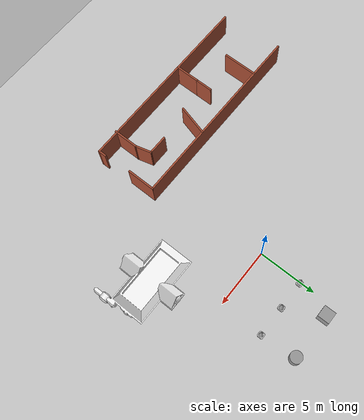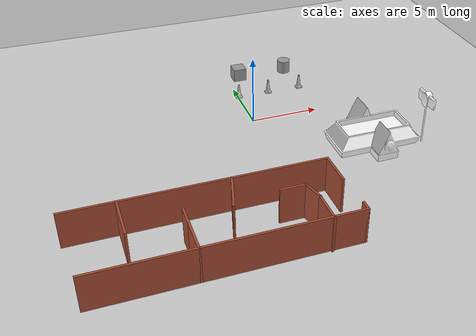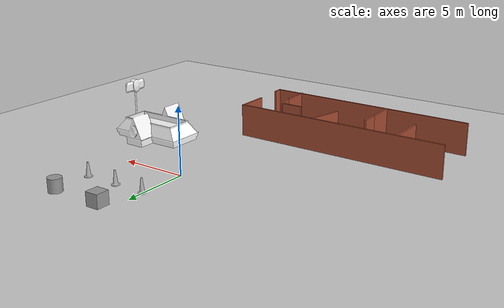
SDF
<sdf version="1.6">
 <world name="default">
  <scene><ambient>0.4 0.4 0.4 1</ambient><background>0.7 0.7 0.7 1</background><shadows>1</shadows></scene>
  <light name="sun" type="directional">
   <pose>0 0 10 0 -0 0</pose>
   <diffuse>0.8 0.8 0.8 1</diffuse>
   <specular>0.2 0.2 0.2 1</specular>
   <attenuation>
    <range>1000</range>
    <constant>0.9</constant>
    <linear>0.01</linear>
    <quadratic>0.001</quadratic>
   </attenuation>
   <direction>-0.5 0.1 -0.9</direction>
  </light>
  <model name="ground_plane">
   <static>1</static>
   <link name="link">
    <collision name="collision">
     <geometry><plane><normal>0 0 1</normal><size>100 100</size></plane></geometry>
     <surface>
      <contact><collide_bitmask>65535</collide_bitmask></contact>
      <friction><ode><mu>100</mu><mu2>50</mu2></ode></friction>
     </surface>
    </collision>
    <visual name="visual">
     <cast_shadows>0</cast_shadows>
     <geometry><plane><normal>0 0 1</normal><size>100 100</size></plane></geometry>
     <material>
      <script><uri>file://media/materials/scripts/gazebo.material</uri><name>Gazebo/Grey</name></script>
     </material>
    </visual>
   </link>
  </model>
  <physics name="default_physics" default="0" type="ode">
   <real_time_update_rate>1000</real_time_update_rate>
   <max_step_size>0.001</max_step_size>
   <real_time_factor>1</real_time_factor>
   <ode>
    <solver>
     <type>quick</type>
     <iters>150</iters>
     <precon_iters>0</precon_iters>
     <sor>1.4</sor>
     <use_dynamic_moi_rescaling>1</use_dynamic_moi_rescaling>
    </solver>
    <constraints>
     <cfm>1e-05</cfm>
     <erp>0.2</erp>
     <contact_max_correcting_vel>2000</contact_max_correcting_vel>
     <contact_surface_layer>0.01</contact_surface_layer>
    </constraints>
   </ode>
  </physics>
  <gravity>0 0 -9.8</gravity>
  <magnetic_field>6e-06 2.3e-05 -4.2e-05</magnetic_field>
  <atmosphere type="adiabatic"/>
  <spherical_coordinates>
   <surface_model>EARTH_WGS84</surface_model>
   <latitude_deg>0</latitude_deg>
   <longitude_deg>0</longitude_deg>
   <elevation>0</elevation>
   <heading_deg>0</heading_deg>
  </spherical_coordinates>
  <model name="mini_project">
   <link name="link_0">
    <pose>-1.02539 5.71429 0.357143 0 -0 0</pose>
    <inertial>
     <mass>1</mass>
     <inertia>
      <ixx>0.166667</ixx>
      <ixy>0</ixy>
      <ixz>0</ixz>
      <iyy>0.166667</iyy>
      <iyz>0</iyz>
      <izz>0.166667</izz>
     </inertia>
    </inertial>
    <visual name="visual">
     <geometry><box><size>1 1 1</size></box></geometry>
     <material>
      <lighting>1</lighting>
      <script><uri>file://media/materials/scripts/gazebo.material</uri><name>Gazebo/Grey</name></script>
      <ambient>0.3 0.3 0.3 1</ambient>
      <diffuse>0.7 0.7 0.7 1</diffuse>
      <specular>0.01 0.01 0.01 1</specular>
      <emissive>0 0 0 1</emissive>
     </material>
    </visual>
    <collision name="collision">
     <geometry><box><size>1 1 1</size></box></geometry>
     <surface>
      <friction>
       <ode><mu>1</mu><mu2>1</mu2><fdir1>0 0 0</fdir1><slip1>0</slip1><slip2>0</slip2></ode>
       <torsional>
        <coefficient>1</coefficient>
        <patch_radius>0</patch_radius>
        <surface_radius>0</surface_radius>
        <use_patch_radius>1</use_patch_radius>
        <ode><slip>0</slip></ode>
       </torsional>
      </friction>
      <bounce><restitution_coefficient>0</restitution_coefficient><threshold>1e+06</threshold></bounce>
      <contact>
       <collide_without_contact>0</collide_without_contact>
       <collide_without_contact_bitmask>1</collide_without_contact_bitmask>
       <collide_bitmask>1</collide_bitmask>
       <ode>
        <soft_cfm>0</soft_cfm>
        <soft_erp>0.2</soft_erp>
        <kp>1e+13</kp>
        <kd>1</kd>
        <max_vel>0.01</max_vel>
        <min_depth>0</min_depth>
       </ode>
       <bullet>
        <split_impulse>1</split_impulse>
        <split_impulse_penetration_threshold>-0.01</split_impulse_penetration_threshold>
        <soft_cfm>0</soft_cfm>
        <soft_erp>0.2</soft_erp>
        <kp>1e+13</kp>
        <kd>1</kd>
       </bullet>
      </contact>
     </surface>
    </collision>
   </link>
   <link name="link_1">
    <pose>2.89593 5.71429 0.357143 0 -0 0</pose>
    <inertial>
     <mass>1</mass>
     <inertia><ixx>0.145833</ixx><ixy>0</ixy><ixz>0</ixz><iyy>0.145833</iyy><iyz>0</iyz><izz>0.125</izz></inertia>
    </inertial>
    <visual name="visual">
     <geometry><cylinder><radius>0.5</radius><length>1</length></cylinder></geometry>
     <material>
      <lighting>1</lighting>
      <script><uri>file://media/materials/scripts/gazebo.material</uri><name>Gazebo/Grey</name></script>
      <ambient>0.3 0.3 0.3 1</ambient>
      <diffuse>0.7 0.7 0.7 1</diffuse>
      <specular>0.01 0.01 0.01 1</specular>
      <emissive>0 0 0 1</emissive>
     </material>
    </visual>
    <collision name="collision">
     <geometry><cylinder><radius>0.5</radius><length>1</length></cylinder></geometry>
     <surface>
      <friction>
       <ode><mu>1</mu><mu2>1</mu2><fdir1>0 0 0</fdir1><slip1>0</slip1><slip2>0</slip2></ode>
       <torsional>
        <coefficient>1</coefficient>
        <patch_radius>0</patch_radius>
        <surface_radius>0</surface_radius>
        <use_patch_radius>1</use_patch_radius>
        <ode><slip>0</slip></ode>
       </torsional>
      </friction>
      <bounce><restitution_coefficient>0</restitution_coefficient><threshold>1e+06</threshold></bounce>
      <contact>
       <collide_without_contact>0</collide_without_contact>
       <collide_without_contact_bitmask>1</collide_without_contact_bitmask>
       <collide_bitmask>1</collide_bitmask>
       <ode>
        <soft_cfm>0</soft_cfm>
        <soft_erp>0.2</soft_erp>
        <kp>1e+13</kp>
        <kd>1</kd>
        <max_vel>0.01</max_vel>
        <min_depth>0</min_depth>
       </ode>
       <bullet>
        <split_impulse>1</split_impulse>
        <split_impulse_penetration_threshold>-0.01</split_impulse_penetration_threshold>
        <soft_cfm>0</soft_cfm>
        <soft_erp>0.2</soft_erp>
        <kp>1e+13</kp>
        <kd>1</kd>
       </bullet>
      </contact>
     </surface>
    </collision>
   </link>
   <model name="Construction Cone">
    <static>1</static>
    <link name="link">
     <collision name="collision">
      <geometry>
       <mesh><scale>10 10 10</scale><uri>model://construction_cone/meshes/construction_cone.dae</uri></mesh>
      </geometry>
     </collision>
     <visual name="visual">
      <geometry>
       <mesh><scale>10 10 10</scale><uri>model://construction_cone/meshes/construction_cone.dae</uri></mesh>
      </geometry>
     </visual>
    </link>
    <pose>0.478743 2.71429 -0.142857 0 -0 0</pose>
   </model>
   <model name="Construction Cone_0">
    <static>1</static>
    <link name="link">
     <collision name="collision">
      <geometry>
       <mesh><scale>10 10 10</scale><uri>model://construction_cone/meshes/construction_cone.dae</uri></mesh>
      </geometry>
     </collision>
     <visual name="visual">
      <geometry>
       <mesh><scale>10 10 10</scale><uri>model://construction_cone/meshes/construction_cone.dae</uri></mesh>
      </geometry>
     </visual>
    </link>
    <pose>-1.92972 2.71429 -0.142857 0 -0 0</pose>
   </model>
   <model name="Construction Cone_1">
    <static>1</static>
    <link name="link">
     <collision name="collision">
      <geometry>
       <mesh><scale>10 10 10</scale><uri>model://construction_cone/meshes/construction_cone.dae</uri></mesh>
      </geometry>
     </collision>
     <visual name="visual">
      <geometry>
       <mesh><scale>10 10 10</scale><uri>model://construction_cone/meshes/construction_cone.dae</uri></mesh>
      </geometry>
     </visual>
    </link>
    <pose>3.06434 2.71429 -0.142857 0 -0 0</pose>
   </model>
   <model name="Fast Food">
    <static>1</static>
    <link name="link">
     <collision name="collision">
      <geometry><mesh><uri>model://fast_food/meshes/fast_food.dae</uri></mesh></geometry>
     </collision>
     <visual name="visual">
      <geometry><mesh><uri>model://fast_food/meshes/fast_food.dae</uri></mesh></geometry>
      <material>
       <script>
        <uri>model://fast_food/materials/scripts</uri>
        <uri>model://fast_food/materials/textures</uri>
        <name>FastFood/Diffuse</name>
       </script>
      </material>
     </visual>
    </link>
    <pose>5.03734 -6.28571 -0.142857 0 -0 0</pose>
   </model>
   <model name="maze1">
    <pose>-8.52126 -13.2857 -0.142857 0 -0 0</pose>
    <link name="Wall_0">
     <collision name="Wall_0_Collision">
      <geometry><box><size>16.75 0.15 2.5</size></box></geometry>
      <pose>0 0 1.25 0 -0 0</pose>
     </collision>
     <visual name="Wall_0_Visual">
      <pose>0 0 1.25 0 -0 0</pose>
      <geometry><box><size>16.75 0.15 2.5</size></box></geometry>
      <material>
       <script><uri>file://media/materials/scripts/gazebo.material</uri><name>Gazebo/Bricks</name></script>
       <ambient>1 1 1 1</ambient>
      </material>
     </visual>
     <pose>-0.087923 2.7514 0 0 -0 0</pose>
    </link>
    <link name="Wall_1">
     <collision name="Wall_1_Collision">
      <geometry><box><size>2.5 0.15 2.5</size></box></geometry>
      <pose>0 0 1.25 0 -0 0</pose>
     </collision>
     <visual name="Wall_1_Visual">
      <pose>0 0 1.25 0 -0 0</pose>
      <geometry><box><size>2.5 0.15 2.5</size></box></geometry>
      <material>
       <script><uri>file://media/materials/scripts/gazebo.material</uri><name>Gazebo/Bricks</name></script>
       <ambient>1 1 1 1</ambient>
      </material>
     </visual>
     <pose>8.21208 1.5764 0 0 0 -1.5708</pose>
    </link>
    <link name="Wall_11">
     <collision name="Wall_11_Collision">
      <geometry><box><size>2.75 0.15 2.5</size></box></geometry>
      <pose>0 0 1.25 0 -0 0</pose>
     </collision>
     <visual name="Wall_11_Visual">
      <pose>0 0 1.25 0 -0 0</pose>
      <geometry><box><size>2.75 0.15 2.5</size></box></geometry>
      <material>
       <script><uri>file://media/materials/scripts/gazebo.material</uri><name>Gazebo/Bricks</name></script>
       <ambient>1 1 1 1</ambient>
      </material>
     </visual>
     <pose>1.61756 1.45007 0 0 0 -1.8326</pose>
    </link>
    <link name="Wall_13">
     <collision name="Wall_13_Collision">
      <geometry><box><size>1.75 0.15 2.5</size></box></geometry>
      <pose>0 0 1.25 0 -0 0</pose>
     </collision>
     <visual name="Wall_13_Visual">
      <pose>0 0 1.25 0 -0 0</pose>
      <geometry><box><size>1.75 0.15 2.5</size></box></geometry>
      <material>
       <script><uri>file://media/materials/scripts/gazebo.material</uri><name>Gazebo/Bricks</name></script>
       <ambient>1 1 1 1</ambient>
      </material>
     </visual>
     <pose>5.11138 0.652596 0 0 -0 0</pose>
    </link>
    <link name="Wall_14">
     <collision name="Wall_14_Collision">
      <geometry><box><size>1.5 0.15 2.5</size></box></geometry>
      <pose>0 0 1.25 0 -0 0</pose>
     </collision>
     <visual name="Wall_14_Visual">
      <pose>0 0 1.25 0 -0 0</pose>
      <geometry><box><size>1.5 0.15 2.5</size></box></geometry>
      <material>
       <script><uri>file://media/materials/scripts/gazebo.material</uri><name>Gazebo/Bricks</name></script>
       <ambient>1 1 1 1</ambient>
      </material>
     </visual>
     <pose>6.08609 0.000596 0 0 0 -1.309</pose>
    </link>
    <link name="Wall_18">
     <collision name="Wall_18_Collision">
      <geometry><box><size>2.25 0.15 2.5</size></box></geometry>
      <pose>0 0 1.25 0 -0 0</pose>
     </collision>
     <visual name="Wall_18_Visual">
      <pose>0 0 1.25 0 -0 0</pose>
      <geometry><box><size>2.25 0.15 2.5</size></box></geometry>
      <material>
       <script><uri>file://media/materials/scripts/gazebo.material</uri><name>Gazebo/Bricks</name></script>
       <ambient>1 1 1 1</ambient>
      </material>
     </visual>
     <pose>6.26079 -1.7014 0 0 0 -1.5708</pose>
    </link>
    <link name="Wall_3">
     <collision name="Wall_3_Collision">
      <geometry><box><size>16.5 0.15 2.5</size></box></geometry>
      <pose>0 0 1.25 0 -0 0</pose>
     </collision>
     <visual name="Wall_3_Visual">
      <pose>0 0 1.25 0 -0 0</pose>
      <geometry><box><size>16.5 0.15 2.5</size></box></geometry>
      <material>
       <script><uri>file://media/materials/scripts/gazebo.material</uri><name>Gazebo/Bricks</name></script>
       <ambient>1 1 1 1</ambient>
      </material>
     </visual>
     <pose>0.212922 -2.6477 0 0 -0 0</pose>
    </link>
    <link name="Wall_4">
     <collision name="Wall_4_Collision">
      <geometry><box><size>0.75 0.15 2.5</size></box></geometry>
      <pose>0 0 1.25 0 -0 0</pose>
     </collision>
     <visual name="Wall_4_Visual">
      <pose>0 0 1.25 0 -0 0</pose>
      <geometry><box><size>0.75 0.15 2.5</size></box></geometry>
      <material>
       <script><uri>file://media/materials/scripts/gazebo.material</uri><name>Gazebo/Bricks</name></script>
       <ambient>1 1 1 1</ambient>
      </material>
     </visual>
     <pose>8.38792 -2.3477 0 0 -0 1.5708</pose>
    </link>
    <link name="Wall_6">
     <collision name="Wall_6_Collision">
      <geometry><box><size>3 0.15 2.5</size></box></geometry>
      <pose>0 0 1.25 0 -0 0</pose>
     </collision>
     <visual name="Wall_6_Visual">
      <pose>0 0 1.25 0 -0 0</pose>
      <geometry><box><size>3 0.15 2.5</size></box></geometry>
      <material>
       <script><uri>file://media/materials/scripts/gazebo.material</uri><name>Gazebo/Bricks</name></script>
       <ambient>1 1 1 1</ambient>
      </material>
     </visual>
     <pose>-4.98116 1.26557 0 0 0 -1.5708</pose>
    </link>
    <link name="Wall_8">
     <collision name="Wall_8_Collision">
      <geometry><box><size>2.25 0.15 2.5</size></box></geometry>
      <pose>0 0 1.25 0 -0 0</pose>
     </collision>
     <visual name="Wall_8_Visual">
      <pose>0 0 1.25 0 -0 0</pose>
      <geometry><box><size>2.25 0.15 2.5</size></box></geometry>
      <material>
       <script><uri>file://media/materials/scripts/gazebo.material</uri><name>Gazebo/Bricks</name></script>
       <ambient>1 1 1 1</ambient>
      </material>
     </visual>
     <pose>-1.51357 -1.5977 0 0 -0 1.5708</pose>
    </link>
    <link name="Wall_9">
     <collision name="Wall_9_Collision">
      <geometry><box><size>1.5 0.15 2.5</size></box></geometry>
      <pose>0 0 1.25 0 -0 0</pose>
     </collision>
     <visual name="Wall_9_Visual">
      <pose>0 0 1.25 0 -0 0</pose>
      <geometry><box><size>1.5 0.15 2.5</size></box></geometry>
      <material>
       <script><uri>file://media/materials/scripts/gazebo.material</uri><name>Gazebo/Bricks</name></script>
       <ambient>1 1 1 1</ambient>
      </material>
     </visual>
     <pose>-1.51357 0.127297 0 0 -0 1.5708</pose>
    </link>
    <static>1</static>
   </model>
   <static>0</static>
   <pose>2 1 0.142857 0 -0 0</pose>
  </model>
 </world>
</sdf>
